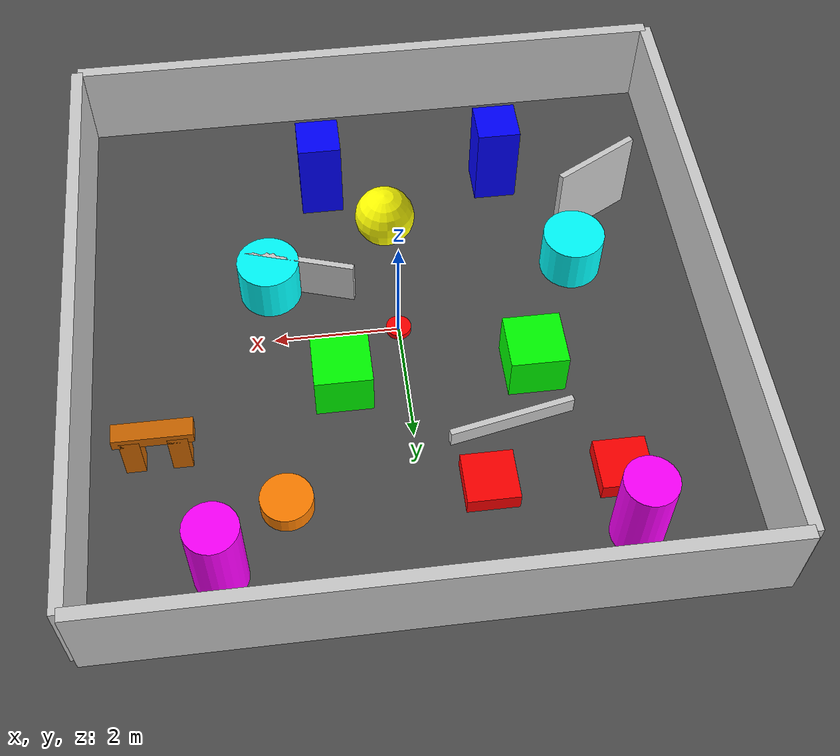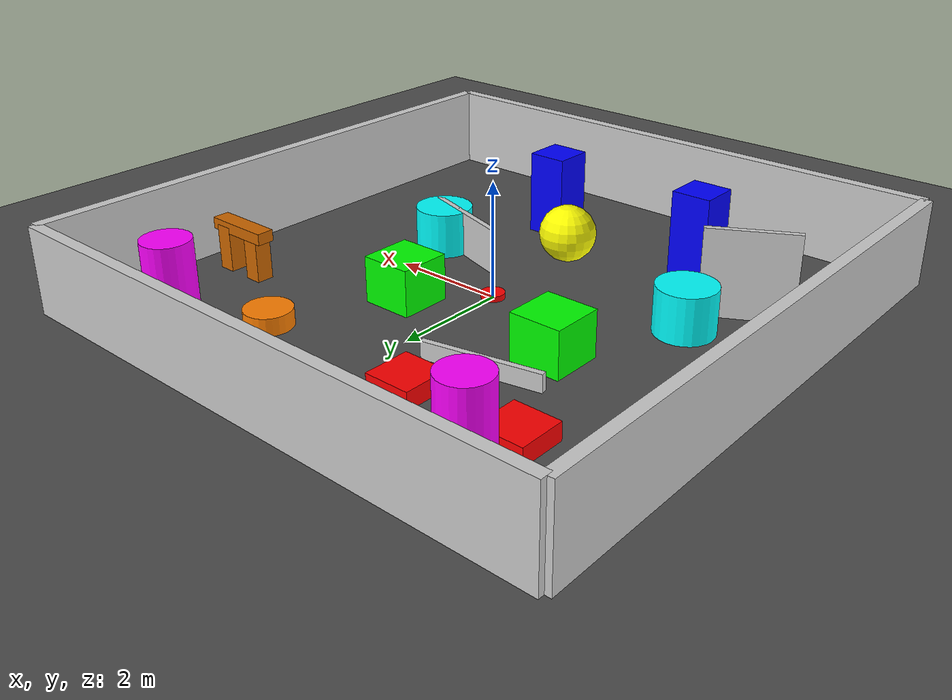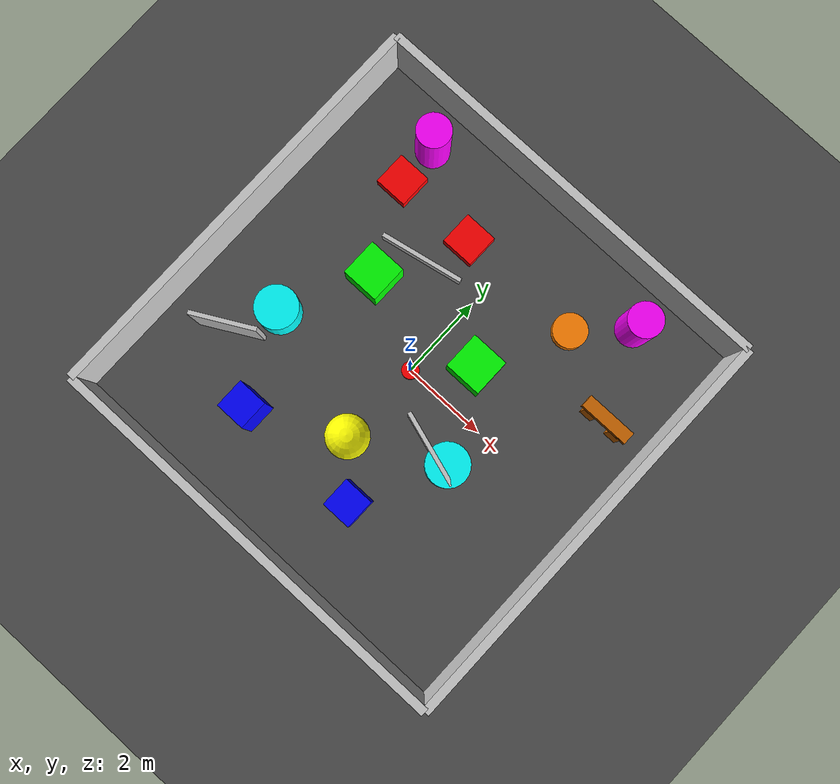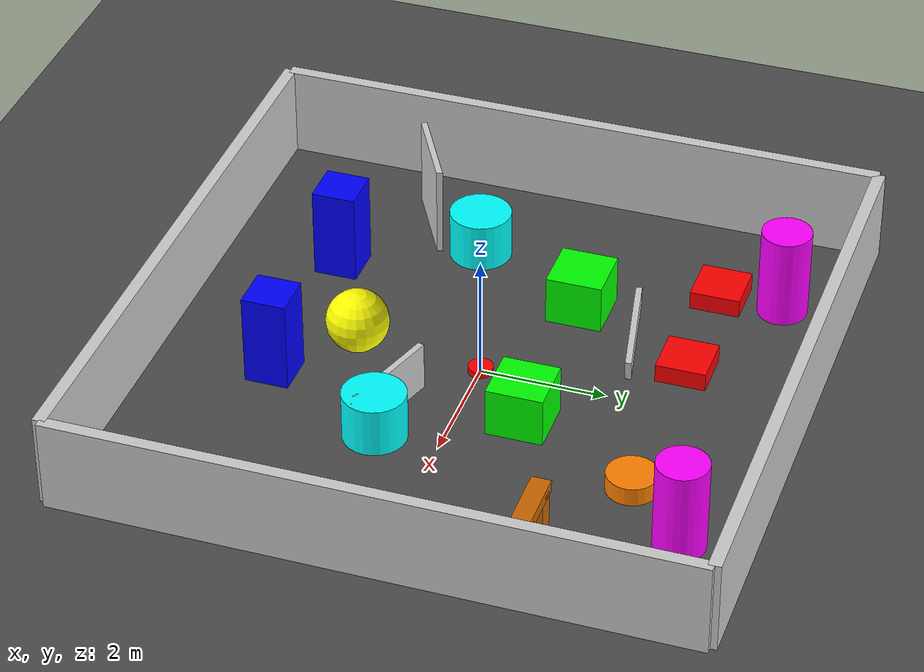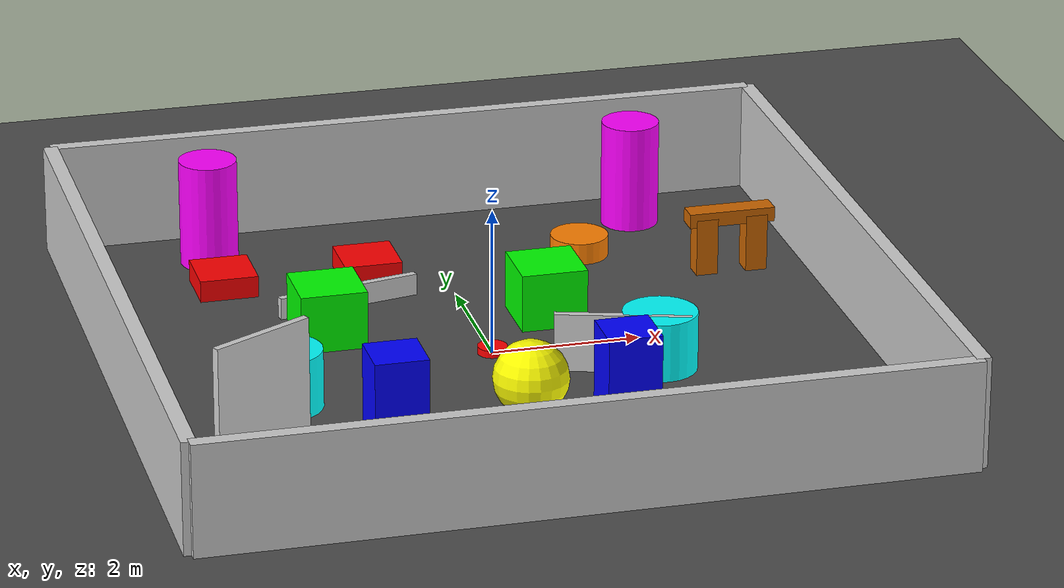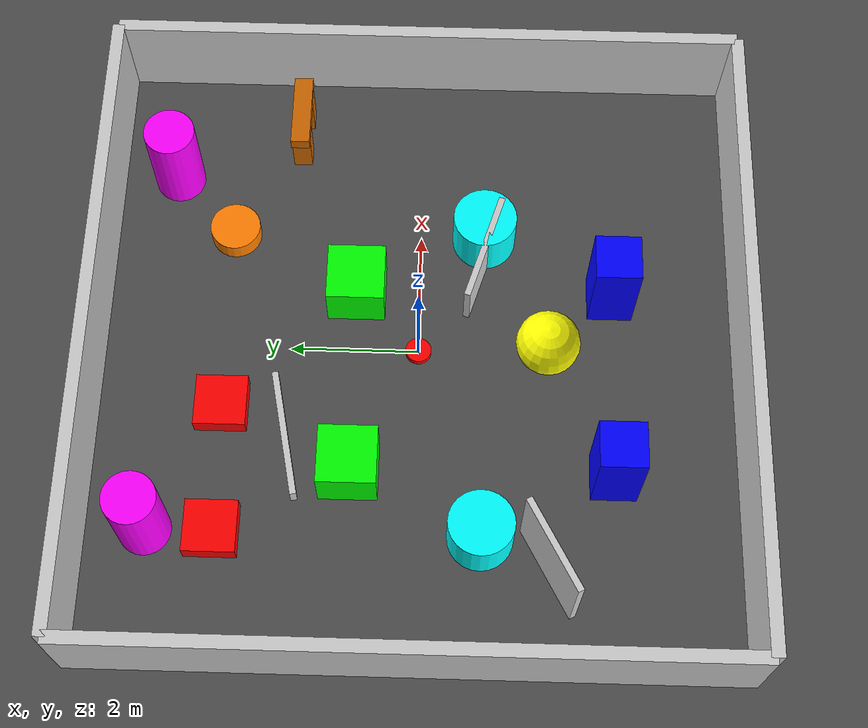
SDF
<?xml version="1.0"?>
<sdf version="1.6">
  <world name="obstacle_maze">

    <!-- ================= ПАРАМЕТРЫ ВЫСОТЫ ПРЕПЯТСТВИЙ ================= -->
    <!-- Три фиксированные высоты для разных типов препятствий -->
    <parameter name="height_low" default="0.3" />
    <parameter name="height_medium" default="0.8" />
    <parameter name="height_high" default="1.5" />

    <!-- ================= ОСВЕЩЕНИЕ ================= -->
    <include>
      <uri>model://sun</uri>
    </include>

    <!-- ================= ПОЛ ================= -->
    <model name="ground_plane">
      <static>true</static>
      <link name="link">
        <collision name="collision">
          <geometry>
            <plane>
              <normal>0 0 1</normal>
              <size>20 20</size>
            </plane>
          </geometry>
        </collision>
        <visual name="visual">
          <geometry>
            <plane>
              <normal>0 0 1</normal>
              <size>20 20</size>
            </plane>
          </geometry>
          <material>
            <ambient>0.3 0.3 0.3 1</ambient>
            <diffuse>0.3 0.3 0.3 1</diffuse>
            <specular>0.1 0.1 0.1 1</specular>
          </material>
        </visual>
      </link>
    </model>

    <!-- ================= СТЕНЫ ПО ПЕРИМЕТРУ (ВЫСОКИЕ) ================= -->
    <!-- Северная стена -->
    <model name="wall_north">
      <static>true</static>
      <pose>0 5 0.75 0 0 0</pose>
      <link name="link">
        <collision name="collision">
          <geometry>
            <box>
              <size>10 0.2 1.5</size>
            </box>
          </geometry>
        </collision>
        <visual name="visual">
          <geometry>
            <box>
              <size>10 0.2 1.5</size>
            </box>
          </geometry>
          <material>
            <ambient>0.5 0.5 0.5 1</ambient>
            <diffuse>0.8 0.8 0.8 1</diffuse>
          </material>
        </visual>
      </link>
    </model>

    <!-- Южная стена -->
    <model name="wall_south">
      <static>true</static>
      <pose>0 -5 0.75 0 0 0</pose>
      <link name="link">
        <collision name="collision">
          <geometry>
            <box>
              <size>10 0.2 1.5</size>
            </box>
          </geometry>
        </collision>
        <visual name="visual">
          <geometry>
            <box>
              <size>10 0.2 1.5</size>
            </box>
          </geometry>
          <material>
            <ambient>0.5 0.5 0.5 1</ambient>
            <diffuse>0.8 0.8 0.8 1</diffuse>
          </material>
        </visual>
      </link>
    </model>

    <!-- Западная стена -->
    <model name="wall_west">
      <static>true</static>
      <pose>-5 0 0.75 0 0 0</pose>
      <link name="link">
        <collision name="collision">
          <geometry>
            <box>
              <size>0.2 10 1.5</size>
            </box>
          </geometry>
        </collision>
        <visual name="visual">
          <geometry>
            <box>
              <size>0.2 10 1.5</size>
            </box>
          </geometry>
          <material>
            <ambient>0.5 0.5 0.5 1</ambient>
            <diffuse>0.8 0.8 0.8 1</diffuse>
          </material>
        </visual>
      </link>
    </model>

    <!-- Восточная стена -->
    <model name="wall_east">
      <static>true</static>
      <pose>5 0 0.75 0 0 0</pose>
      <link name="link">
        <collision name="collision">
          <geometry>
            <box>
              <size>0.2 10 1.5</size>
            </box>
          </geometry>
        </collision>
        <visual name="visual">
          <geometry>
            <box>
              <size>0.2 10 1.5</size>
            </box>
          </geometry>
          <material>
            <ambient>0.5 0.5 0.5 1</ambient>
            <diffuse>0.8 0.8 0.8 1</diffuse>
          </material>
        </visual>
      </link>
    </model>

    <!-- ================= НИЗКИЕ ПРЕПЯТСТВИЯ (0.3 м) ================= -->
    <!-- Маленькие кубы - низкие -->
    <model name="obstacle_cube_low_1">
      <static>true</static>
      <pose>-3 3 0.15 0 0 0</pose>
      <link name="link">
        <collision name="collision">
          <geometry>
            <box>
              <size>0.8 0.8 0.3</size>
            </box>
          </geometry>
        </collision>
        <visual name="visual">
          <geometry>
            <box>
              <size>0.8 0.8 0.3</size>
            </box>
          </geometry>
          <material>
            <ambient>1 0 0 1</ambient>
            <diffuse>1 0 0 1</diffuse>
          </material>
        </visual>
      </link>
    </model>

    <model name="obstacle_cube_low_2">
      <static>true</static>
      <pose>-1 3 0.15 0 0 0</pose>
      <link name="link">
        <collision name="collision">
          <geometry>
            <box>
              <size>0.8 0.8 0.3</size>
            </box>
          </geometry>
        </collision>
        <visual name="visual">
          <geometry>
            <box>
              <size>0.8 0.8 0.3</size>
            </box>
          </geometry>
          <material>
            <ambient>1 0 0 1</ambient>
            <diffuse>1 0 0 1</diffuse>
          </material>
        </visual>
      </link>
    </model>

    <!-- Маленькие цилиндры - низкие -->
    <model name="obstacle_cylinder_low_1">
      <static>true</static>
      <pose>2 3 0.15 0 0 0</pose>
      <link name="link">
        <collision name="collision">
          <geometry>
            <cylinder>
              <radius>0.4</radius>
              <length>0.3</length>
            </cylinder>
          </geometry>
        </collision>
        <visual name="visual">
          <geometry>
            <cylinder>
              <radius>0.4</radius>
              <length>0.3</length>
            </cylinder>
          </geometry>
          <material>
            <ambient>1 0.5 0 1</ambient>
            <diffuse>1 0.5 0 1</diffuse>
          </material>
        </visual>
      </link>
    </model>

    <!-- ================= СРЕДНИЕ ПРЕПЯТСТВИЯ (0.8 м) ================= -->
    <!-- Средние кубы -->
    <model name="obstacle_cube_medium_1">
      <static>true</static>
      <pose>-2 1 0.4 0 0 0</pose>
      <link name="link">
        <collision name="collision">
          <geometry>
            <box>
              <size>0.9 0.9 0.8</size>
            </box>
          </geometry>
        </collision>
        <visual name="visual">
          <geometry>
            <box>
              <size>0.9 0.9 0.8</size>
            </box>
          </geometry>
          <material>
            <ambient>0 1 0 1</ambient>
            <diffuse>0 1 0 1</diffuse>
          </material>
        </visual>
      </link>
    </model>

    <model name="obstacle_cube_medium_2">
      <static>true</static>
      <pose>1 1 0.4 0 0 0</pose>
      <link name="link">
        <collision name="collision">
          <geometry>
            <box>
              <size>0.9 0.9 0.8</size>
            </box>
          </geometry>
        </collision>
        <visual name="visual">
          <geometry>
            <box>
              <size>0.9 0.9 0.8</size>
            </box>
          </geometry>
          <material>
            <ambient>0 1 0 1</ambient>
            <diffuse>0 1 0 1</diffuse>
          </material>
        </visual>
      </link>
    </model>

    <!-- Средние цилиндры -->
    <model name="obstacle_cylinder_medium_1">
      <static>true</static>
      <pose>-3 -1 0.4 0 0 0</pose>
      <link name="link">
        <collision name="collision">
          <geometry>
            <cylinder>
              <radius>0.5</radius>
              <length>0.8</length>
            </cylinder>
          </geometry>
        </collision>
        <visual name="visual">
          <geometry>
            <cylinder>
              <radius>0.5</radius>
              <length>0.8</length>
            </cylinder>
          </geometry>
          <material>
            <ambient>0 1 1 1</ambient>
            <diffuse>0 1 1 1</diffuse>
          </material>
        </visual>
      </link>
    </model>

    <model name="obstacle_cylinder_medium_2">
      <static>true</static>
      <pose>2 -1 0.4 0 0 0</pose>
      <link name="link">
        <collision name="collision">
          <geometry>
            <cylinder>
              <radius>0.5</radius>
              <length>0.8</length>
            </cylinder>
          </geometry>
        </collision>
        <visual name="visual">
          <geometry>
            <cylinder>
              <radius>0.5</radius>
              <length>0.8</length>
            </cylinder>
          </geometry>
          <material>
            <ambient>0 1 1 1</ambient>
            <diffuse>0 1 1 1</diffuse>
          </material>
        </visual>
      </link>
    </model>

    <!-- ================= ВЫСОКИЕ ПРЕПЯТСТВИЯ (1.5 м) ================= -->
    <!-- Высокие кубы -->
    <model name="obstacle_cube_high_1">
      <static>true</static>
      <pose>-2 -3 0.75 0 0 0</pose>
      <link name="link">
        <collision name="collision">
          <geometry>
            <box>
              <size>0.7 0.7 1.5</size>
            </box>
          </geometry>
        </collision>
        <visual name="visual">
          <geometry>
            <box>
              <size>0.7 0.7 1.5</size>
            </box>
          </geometry>
          <material>
            <ambient>0 0 1 1</ambient>
            <diffuse>0 0 1 1</diffuse>
          </material>
        </visual>
      </link>
    </model>

    <model name="obstacle_cube_high_2">
      <static>true</static>
      <pose>1 -3 0.75 0 0 0</pose>
      <link name="link">
        <collision name="collision">
          <geometry>
            <box>
              <size>0.7 0.7 1.5</size>
            </box>
          </geometry>
        </collision>
        <visual name="visual">
          <geometry>
            <box>
              <size>0.7 0.7 1.5</size>
            </box>
          </geometry>
          <material>
            <ambient>0 0 1 1</ambient>
            <diffuse>0 0 1 1</diffuse>
          </material>
        </visual>
      </link>
    </model>

    <!-- Высокие цилиндры -->
    <model name="obstacle_cylinder_high_1">
      <static>true</static>
      <pose>-3 4 0.75 0 0 0</pose>
      <link name="link">
        <collision name="collision">
          <geometry>
            <cylinder>
              <radius>0.4</radius>
              <length>1.5</length>
            </cylinder>
          </geometry>
        </collision>
        <visual name="visual">
          <geometry>
            <cylinder>
              <radius>0.4</radius>
              <length>1.5</length>
            </cylinder>
          </geometry>
          <material>
            <ambient>1 0 1 1</ambient>
            <diffuse>1 0 1 1</diffuse>
          </material>
        </visual>
      </link>
    </model>

    <model name="obstacle_cylinder_high_2">
      <static>true</static>
      <pose>3 4 0.75 0 0 0</pose>
      <link name="link">
        <collision name="collision">
          <geometry>
            <cylinder>
              <radius>0.4</radius>
              <length>1.5</length>
            </cylinder>
          </geometry>
        </collision>
        <visual name="visual">
          <geometry>
            <cylinder>
              <radius>0.4</radius>
              <length>1.5</length>
            </cylinder>
          </geometry>
          <material>
            <ambient>1 0 1 1</ambient>
            <diffuse>1 0 1 1</diffuse>
          </material>
        </visual>
      </link>
    </model>

    <!-- ================= СПЕЦИАЛЬНЫЕ ПРЕПЯТСТВИЯ ================= -->
    <!-- Сфера (всегда одинаковой высоты) -->
    <model name="obstacle_sphere">
      <static>true</static>
      <pose>0 -2 0.5 0 0 0</pose>
      <link name="link">
        <collision name="collision">
          <geometry>
            <sphere>
              <radius>0.5</radius>
            </sphere>
          </geometry>
        </collision>
        <visual name="visual">
          <geometry>
            <sphere>
              <radius>0.5</radius>
            </sphere>
          </geometry>
          <material>
            <ambient>1 1 0 1</ambient>
            <diffuse>1 1 0 1</diffuse>
          </material>
        </visual>
      </link>
    </model>

    <!-- Тонкие стены разной высоты -->
    <model name="thin_wall_low">
      <static>true</static>
      <pose>-1.5 2 0.15 0 0 0.2</pose>
      <link name="link">
        <collision name="collision">
          <geometry>
            <box>
              <size>2 0.1 0.3</size>
            </box>
          </geometry>
        </collision>
        <visual name="visual">
          <geometry>
            <box>
              <size>2 0.1 0.3</size>
            </box>
          </geometry>
          <material>
            <ambient>0.5 0.5 0.5 1</ambient>
            <diffuse>0.8 0.8 0.8 1</diffuse>
          </material>
        </visual>
      </link>
    </model>

    <model name="thin_wall_medium">
      <static>true</static>
      <pose>1.5 -1 0.4 0 0 -0.3</pose>
      <link name="link">
        <collision name="collision">
          <geometry>
            <box>
              <size>1.8 0.1 0.8</size>
            </box>
          </geometry>
        </collision>
        <visual name="visual">
          <geometry>
            <box>
              <size>1.8 0.1 0.8</size>
            </box>
          </geometry>
          <material>
            <ambient>0.5 0.5 0.5 1</ambient>
            <diffuse>0.8 0.8 0.8 1</diffuse>
          </material>
        </visual>
      </link>
    </model>

    <model name="thin_wall_high">
      <static>true</static>
      <pose>-3.5 -2 0.75 0 0 0.5</pose>
      <link name="link">
        <collision name="collision">
          <geometry>
            <box>
              <size>1.5 0.1 1.5</size>
            </box>
          </geometry>
        </collision>
        <visual name="visual">
          <geometry>
            <box>
              <size>1.5 0.1 1.5</size>
            </box>
          </geometry>
          <material>
            <ambient>0.5 0.5 0.5 1</ambient>
            <diffuse>0.8 0.8 0.8 1</diffuse>
          </material>
        </visual>
      </link>
    </model>

    <!-- Арка (комбинация низкого и высокого) -->
    <model name="arch_left">
      <static>true</static>
      <pose>3.5 2 0.4 0 0 0</pose>
      <link name="link">
        <collision name="collision">
          <geometry>
            <box>
              <size>0.3 0.3 0.8</size>
            </box>
          </geometry>
        </collision>
        <visual name="visual">
          <geometry>
            <box>
              <size>0.3 0.3 0.8</size>
            </box>
          </geometry>
          <material>
            <ambient>0.8 0.4 0 1</ambient>
            <diffuse>0.8 0.4 0 1</diffuse>
          </material>
        </visual>
      </link>
    </model>

    <model name="arch_right">
      <static>true</static>
      <pose>4.2 2 0.4 0 0 0</pose>
      <link name="link">
        <collision name="collision">
          <geometry>
            <box>
              <size>0.3 0.3 0.8</size>
            </box>
          </geometry>
        </collision>
        <visual name="visual">
          <geometry>
            <box>
              <size>0.3 0.3 0.8</size>
            </box>
          </geometry>
          <material>
            <ambient>0.8 0.4 0 1</ambient>
            <diffuse>0.8 0.4 0 1</diffuse>
          </material>
        </visual>
      </link>
    </model>

    <model name="arch_top">
      <static>true</static>
      <pose>3.85 2 0.8 0 0 0</pose>
      <link name="link">
        <collision name="collision">
          <geometry>
            <box>
              <size>1.2 0.3 0.2</size>
            </box>
          </geometry>
        </collision>
        <visual name="visual">
          <geometry>
            <box>
              <size>1.2 0.3 0.2</size>
            </box>
          </geometry>
          <material>
            <ambient>0.8 0.4 0 1</ambient>
            <diffuse>0.8 0.4 0 1</diffuse>
          </material>
        </visual>
      </link>
    </model>

    <!-- ================= МАРКЕР В ЦЕНТРЕ ================= -->
    <model name="marker">
      <static>true</static>
      <pose>0 0 0.05 0 0 0</pose>
      <link name="link">
        <visual name="visual">
          <geometry>
            <cylinder>
              <radius>0.2</radius>
              <length>0.1</length>
            </cylinder>
          </geometry>
          <material>
            <ambient>1 0 0 1</ambient>
            <diffuse>1 0 0 1</diffuse>
          </material>
        </visual>
      </link>
    </model>

  </world>
</sdf>
